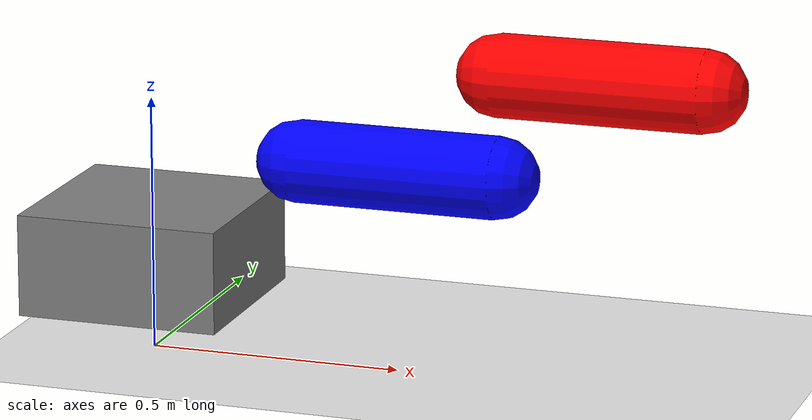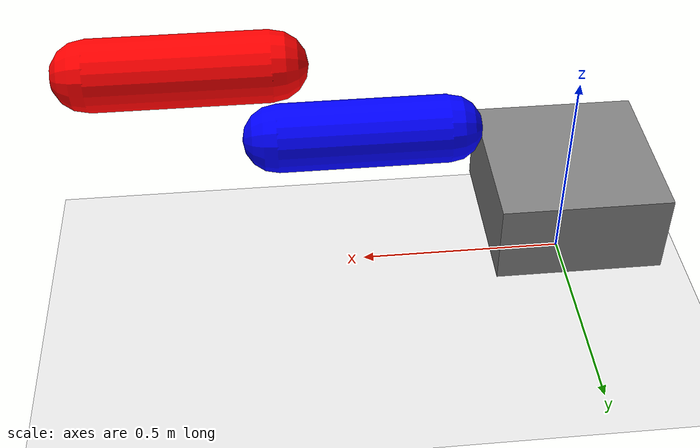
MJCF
<mujoco model="two_link_arm_with_gaps">
    <option timestep="0.01" gravity="0 0 -9.81"/>

    <default>
        <joint armature="0.1" damping="0.5" limited="true"/>
        <geom condim="3" friction="1 0.1 0.1" rgba="0.8 0.6 0.4 1"/>
    </default>

    <worldbody>
        <geom name="floor" type="plane" size="5 5 0.1" rgba="0.9 0.9 0.9 1"/>

        <!-- 基座 body -->
        <body name="base" pos="0 0 0.2">
            <!-- 基座的几何形状，设置合适尺寸，比如立方体 -->
            <geom name="base_geom" type="box" size="0.2 0.2 0.1" rgba="0.5 0.5 0.5 1"/>
            <!-- 第一个关节，连接基座和连杆1 -->
            <joint name="joint1" type="hinge" axis="0 0 1" range="-3.1416 3.1416"/>

            <!-- 连杆1 body -->
            <body name="link1" pos="0.3 0 0.2">  <!-- 与基座在 Y、Z 方向错开，X 方向拉开距离形成缝隙 -->
                <!-- 连杆1的几何形状，比如胶囊体 -->
                <geom name="link1_geom" type="capsule" fromto="0 0 0 0.4 0 0" size="0.08" rgba="0 0 1 1"/>
                <!-- 第二个关节，连接连杆1和连杆2 -->
                <joint name="joint2" type="hinge" axis="0 0 1" range="-3.1416 3.1416"/>

                <!-- 连杆2 body -->
                <body name="link2" pos="0.4 0 0.2">  <!-- 与连杆1在 Y、Z 方向错开，X 方向拉开距离形成缝隙 -->
                    <!-- 连杆2的几何形状，比如胶囊体 -->
                    <geom name="link2_geom" type="capsule" fromto="0 0 0 0.4 0 0" size="0.08" rgba="1 0 0 1"/>
                </body>
            </body>
        </body>
    </worldbody>

    <actuator>
        <motor name="motor1" joint="joint1" gear="500"/>
        <motor name="motor2" joint="joint2" gear="500"/>
    </actuator>
</mujoco>
